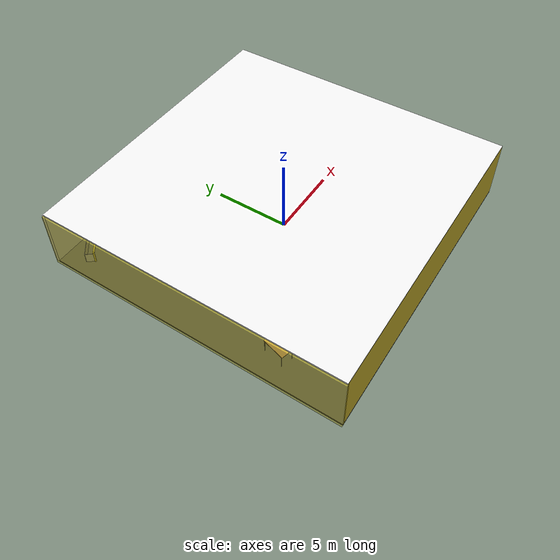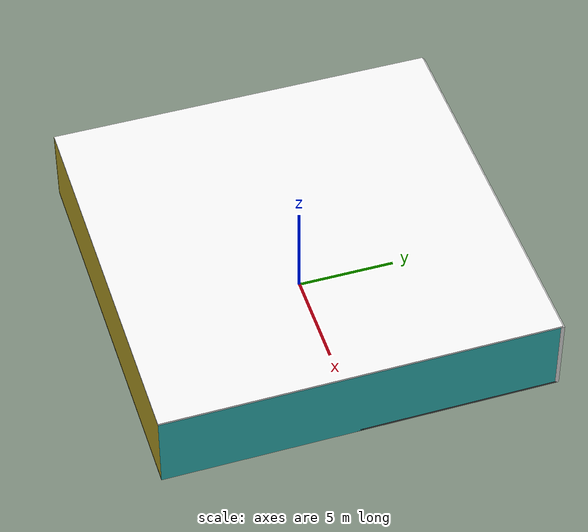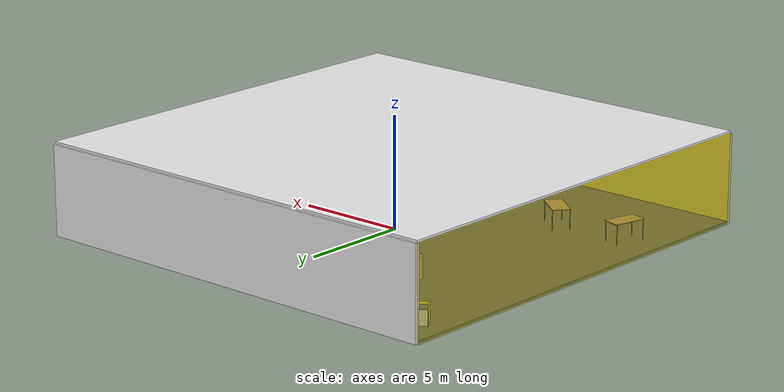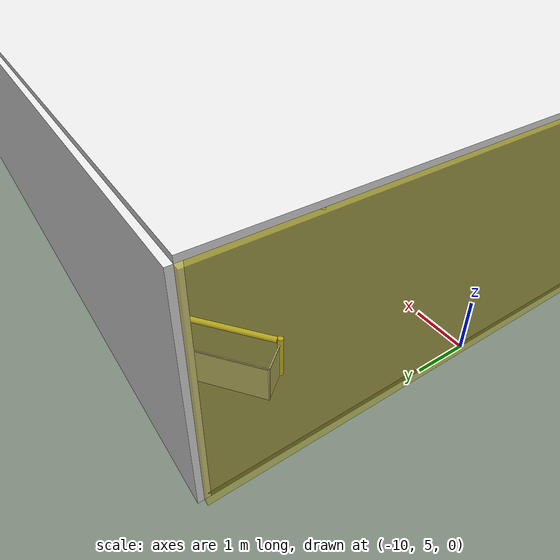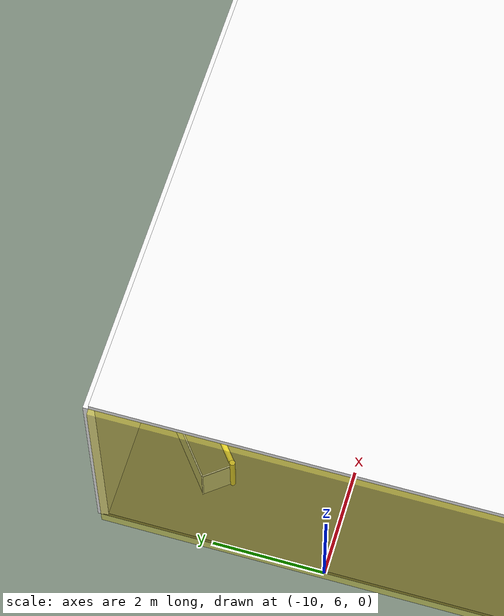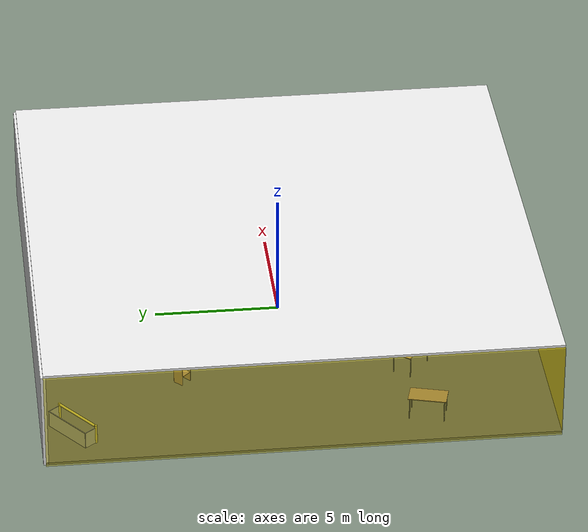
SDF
<sdf version="1.4">
 <world name="default">
  <physics type="ode">
   <max_step_size>0.001</max_step_size>
   <real_time_factor>1</real_time_factor>
   <real_time_update_rate>1000</real_time_update_rate>
   <gravity>0 0 -9.8</gravity>
  </physics>
  <scene><ambient>0.4 0.4 0.4 1</ambient><background>0.7 0.7 0.7 1</background><shadows>1</shadows></scene>
  <model name="Surrounding">
   <static>1</static>
   <link name="Ceiling">
    <collision name="Ceiling_Collision"><geometry><box><size>20 20 0.1</size></box></geometry></collision>
    <visual name="Ceiling_Visual">
     <geometry><box><size>20 20 0.1</size></box></geometry>
     <material>
      <script><uri>file://media/materials/scripts/gazebo.material</uri><name>Gazebo/White</name></script>
     </material>
    </visual>
    <pose>0 0 4.05 0 0 0</pose>
   </link>
   <link name="Wall_South">
    <collision name="Wall_South_Collision">
     <geometry><box><size>20 0 4</size></box></geometry>
     <pose>0 0 2 0 -0 0</pose>
    </collision>
    <visual name="Wall_South_Visual">
     <pose>0 0 2 0 -0 0</pose>
     <geometry><box><size>20 0 4</size></box></geometry>
     <material>
      <script><uri>file://media/materials/scripts/gazebo.material</uri><name>Gazebo/ZincYellow</name></script>
     </material>
    </visual>
    <velocity_decay><linear>0</linear><angular>0</angular></velocity_decay>
    <pose>0 -10 0 0 -0 0</pose>
   </link>
   <link name="Wall_East">
    <collision name="Wall_21_Collision">
     <geometry><box><size>20 0 4</size></box></geometry>
     <pose>0 0 2 0 -0 0</pose>
    </collision>
    <visual name="Wall_21_Visual">
     <pose>0 0 2 0 -0 0</pose>
     <geometry><box><size>20 0 4</size></box></geometry>
     <material>
      <script>
       <uri>file://media/materials/scripts/gazebo.material</uri>
       <name>Gazebo/TurquoiseGlowOutline</name>
      </script>
     </material>
    </visual>
    <velocity_decay><linear>0</linear><angular>0</angular></velocity_decay>
    <pose>10 0 0 0 -0 1.5708</pose>
   </link>
   <link name="Wall_North">
    <collision name="Wall_22_Collision">
     <geometry><box><size>20 0.2 4</size></box></geometry>
     <pose>0 0 2 0 -0 0</pose>
    </collision>
    <visual name="Wall_22_Visual">
     <pose>0 0 2 0 -0 0</pose>
     <geometry><box><size>20 0.2 4</size></box></geometry>
     <material>
      <script><uri>file://media/materials/scripts/gazebo.material</uri><name>Gazebo/White</name></script>
     </material>
    </visual>
    <velocity_decay><linear>0</linear><angular>0</angular></velocity_decay>
    <pose>0 10 0 0 -0 0</pose>
   </link>
   <link name="Wall_West">
    <collision name="Wall_23_Collision">
     <geometry><box><size>20 0.2 4</size></box></geometry>
     <pose>0 0 2 0 -0 0</pose>
    </collision>
    <visual name="Wall_23_Visual">
     <pose>0 0 2 0 -0 0</pose>
     <geometry><box><size>20 0.2 4</size></box></geometry>
     <material>
      <script>
       <uri>file://media/materials/scripts/gazebo.material</uri>
       <name>Gazebo/YellowTransparent</name>
      </script>
     </material>
    </visual>
    <velocity_decay><linear>0</linear><angular>0</angular></velocity_decay>
    <pose>-10 0 0 0 0 -1.5708</pose>
   </link>
   <link name="Ground_link">
    <collision name="collision">
     <pose>0 0 .05 0 -0 0</pose>
     <geometry><box><size>20 20 0.1</size></box></geometry>
    </collision>
    <visual name="visual">
     <pose>0 0 .05 0 -0 0</pose>
     <geometry><box><size>20 20 0.1</size></box></geometry>
     <material>
      <script><uri>file://media/materials/scripts/gazebo.material</uri><name>Gazebo/DarkGrey</name></script>
     </material>
    </visual>
   </link>
   <static>1</static>
  </model>
  <spherical_coordinates>
   <surface_model>EARTH_WGS84</surface_model>
   <latitude_deg>0</latitude_deg>
   <longitude_deg>0</longitude_deg>
   <elevation>0</elevation>
   <heading_deg>0</heading_deg>
  </spherical_coordinates>
  <light name="lightball_0" type="diffuse">
   <diffuse>0.8 0.8 0.8 1</diffuse>
   <specular>0.2 0.2 0.2 1</specular>
   <attenuation>
    <range>100</range>
    <constant>0.7</constant>
    <linear>0.01</linear>
    <quadratic>0.001</quadratic>
   </attenuation>
   <direction>-0.5 0.1 -0.9</direction>
   <pose>2.84083851917 -8.93439427084 2.90713137208 0 0 0</pose>
  </light>
  <light name="lightball_1" type="diffuse">
   <diffuse>0.8 0.8 0.8 1</diffuse>
   <specular>0.2 0.2 0.2 1</specular>
   <attenuation>
    <range>100</range>
    <constant>0.7</constant>
    <linear>0.01</linear>
    <quadratic>0.001</quadratic>
   </attenuation>
   <direction>-0.5 0.1 -0.9</direction>
   <pose>-7.96737531771 8.29602328393 2.83717921147 0 0 0</pose>
  </light>
  <light name="lightball_2" type="diffuse">
   <diffuse>0.8 0.8 0.8 1</diffuse>
   <specular>0.2 0.2 0.2 1</specular>
   <attenuation>
    <range>100</range>
    <constant>0.7</constant>
    <linear>0.01</linear>
    <quadratic>0.001</quadratic>
   </attenuation>
   <direction>-0.5 0.1 -0.9</direction>
   <pose>2.41452817689 -1.44401280919 1.63876212729 0 0 0</pose>
  </light>
  <light name="lightball_3" type="diffuse">
   <diffuse>0.8 0.8 0.8 1</diffuse>
   <specular>0.2 0.2 0.2 1</specular>
   <attenuation>
    <range>100</range>
    <constant>0.7</constant>
    <linear>0.01</linear>
    <quadratic>0.001</quadratic>
   </attenuation>
   <direction>-0.5 0.1 -0.9</direction>
   <pose>2.23571433296 -5.72625804763 1.14346293384 0 0 0</pose>
  </light>
  <light name="lightball_4" type="diffuse">
   <diffuse>0.8 0.8 0.8 1</diffuse>
   <specular>0.2 0.2 0.2 1</specular>
   <attenuation>
    <range>100</range>
    <constant>0.7</constant>
    <linear>0.01</linear>
    <quadratic>0.001</quadratic>
   </attenuation>
   <direction>-0.5 0.1 -0.9</direction>
   <pose>0.281517037457 0.951436252007 2.93118222384 0 0 0</pose>
  </light>
  <light name="lightball_5" type="diffuse">
   <diffuse>0.8 0.8 0.8 1</diffuse>
   <specular>0.2 0.2 0.2 1</specular>
   <attenuation>
    <range>100</range>
    <constant>0.7</constant>
    <linear>0.01</linear>
    <quadratic>0.001</quadratic>
   </attenuation>
   <direction>-0.5 0.1 -0.9</direction>
   <pose>-9.03642213388 -9.52245420522 3.5843722402 0 0 0</pose>
  </light>
  <light name="lightball_6" type="diffuse">
   <diffuse>0.8 0.8 0.8 1</diffuse>
   <specular>0.2 0.2 0.2 1</specular>
   <attenuation>
    <range>100</range>
    <constant>0.7</constant>
    <linear>0.01</linear>
    <quadratic>0.001</quadratic>
   </attenuation>
   <direction>-0.5 0.1 -0.9</direction>
   <pose>-3.461814339 -5.84565893818 2.72820931018 0 0 0</pose>
  </light>
  <light name="lightball_7" type="diffuse">
   <diffuse>0.8 0.8 0.8 1</diffuse>
   <specular>0.2 0.2 0.2 1</specular>
   <attenuation>
    <range>100</range>
    <constant>0.7</constant>
    <linear>0.01</linear>
    <quadratic>0.001</quadratic>
   </attenuation>
   <direction>-0.5 0.1 -0.9</direction>
   <pose>-3.59755170374 -9.48251165096 2.19447583022 0 0 0</pose>
  </light>
  <include><uri>model://table</uri><pose>-8.31732626224 -4.99120465607 0 0 0 1.3079292655</pose></include>
  <include>
   <uri>model://robocup_3Dsim_goal</uri>
   <pose>-8.01124622063 8.64306044148 0 0 0 2.2392126353</pose>
  </include>
  <include><uri>model://table</uri><pose>-4.92644045358 -4.77165134946 0 0 0 2.48899009824</pose></include>
  <include><uri>model://cabinet</uri><pose>-5.01381547397 4.32907518873 0 0 0 0.766508419842</pose></include>
  <include><uri>model://cabinet</uri><pose>-0.415533886806 -5.02906364762 0 0 0 1.55534760991</pose></include>
  <include><uri>model://cabinet</uri><pose>1.30947572443 -1.90066644441 0 0 0 2.18837097615</pose></include>
  <include><uri>model://cabinet</uri><pose>4.34430112807 -7.88336177472 0 0 0 2.45190902144</pose></include>
  <include><uri>model://table</uri><pose>7.19270074335 -6.7312083547 0 0 0 1.99932785495</pose></include>
 </world>
</sdf>

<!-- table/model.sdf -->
<sdf version="1.5">
  <model name="table">
    <static>true</static>
    <link name="link">
      <collision name="surface">
        <pose>0 0 1.0 0 0 0</pose>
        <geometry>
          <box>
            <size>1.5 0.8 0.03</size>
          </box>
        </geometry>
        <surface>
          <friction>
            <ode>
              <mu>0.6</mu>
              <mu2>0.6</mu2>
            </ode>
          </friction>
        </surface>
      </collision>
      <visual name="visual1">
        <pose>0 0 1.0 0 0 0</pose>
        <geometry>
          <box>
            <size>1.5 0.8 0.03</size>
          </box>
        </geometry>
        <material>
          <script>
            <uri>model://media/materials/scripts/gazebo.material</uri>
            <name>Gazebo/Wood</name>
          </script>
        </material>
      </visual>
      <collision name="front_left_leg">
        <pose>0.68 0.38 0.5 0 0 0</pose>
        <geometry>
          <cylinder>
            <radius>0.02</radius>
            <length>1.0</length>
          </cylinder>
        </geometry>
      </collision>
      <visual name="front_left_leg">
        <pose>0.68 0.38 0.5 0 0 0</pose>
        <geometry>
          <cylinder>
            <radius>0.02</radius>
            <length>1.0</length>
          </cylinder>
        </geometry>
        <material>
          <script>
            <uri>model://media/materials/scripts/gazebo.material</uri>
            <name>Gazebo/Grey</name>
          </script>
        </material>
      </visual>
      <collision name="front_right_leg">
        <pose>0.68 -0.38 0.5 0 0 0</pose>
        <geometry>
          <cylinder>
            <radius>0.02</radius>
            <length>1.0</length>
          </cylinder>
        </geometry>
      </collision>
      <visual name="front_right_leg">
        <pose>0.68 -0.38 0.5 0 0 0</pose>
        <geometry>
          <cylinder>
            <radius>0.02</radius>
            <length>1.0</length>
          </cylinder>
        </geometry>
        <material>
          <script>
            <uri>model://media/materials/scripts/gazebo.material</uri>
            <name>Gazebo/Grey</name>
          </script>
        </material>
      </visual>
      <collision name="back_right_leg">
        <pose>-0.68 -0.38 0.5 0 0 0</pose>
        <geometry>
          <cylinder>
            <radius>0.02</radius>
            <length>1.0</length>
          </cylinder>
        </geometry>
      </collision>
      <visual name="back_right_leg">
        <pose>-0.68 -0.38 0.5 0 0 0</pose>
        <geometry>
          <cylinder>
            <radius>0.02</radius>
            <length>1.0</length>
          </cylinder>
        </geometry>
        <material>
          <script>
            <uri>model://media/materials/scripts/gazebo.material</uri>
            <name>Gazebo/Grey</name>
          </script>
        </material>
      </visual>
      <collision name="back_left_leg">
        <pose>-0.68 0.38 0.5 0 0 0</pose>
        <geometry>
          <cylinder>
            <radius>0.02</radius>
            <length>1.0</length>
          </cylinder>
        </geometry>
      </collision>
      <visual name="back_left_leg">
        <pose>-0.68 0.38 0.5 0 0 0</pose>
        <geometry>
          <cylinder>
            <radius>0.02</radius>
            <length>1.0</length>
          </cylinder>
        </geometry>
        <material>
          <script>
            <uri>model://media/materials/scripts/gazebo.material</uri>
            <name>Gazebo/Grey</name>
          </script>
        </material>
      </visual>
    </link>
  </model>
</sdf>

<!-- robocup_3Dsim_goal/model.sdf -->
<sdf version="1.5">
  <model name="robocup_3d_goal">
    <static>true</static>
    <link name="left_post">
      <pose>0 1.05 0.45 0 0 0</pose>
      <collision name="collision">
        <geometry>
          <cylinder>
            <radius>0.05</radius>
            <length>0.9</length>
          </cylinder>
        </geometry>
      </collision>
      <visual name="visual">
        <geometry>
          <cylinder>
            <radius>0.05</radius>
            <length>0.9</length>
          </cylinder>
        </geometry>
        <material>
          <script>
            <uri>file://media/materials/scripts/gazebo.material</uri>
            <name>Gazebo/ZincYellow</name>
          </script>
        </material>
      </visual>
    </link>
    <link name="left_support_horiz_lower">
      <pose>0.30 1.05 0.01 0 0 0</pose>
      <collision name="collision">
        <geometry>
          <box>
            <size>0.50 0.02 0.02</size>
          </box>
        </geometry>
      </collision>
      <visual name="visual">
        <geometry>
          <box>
            <size>0.50 0.02 0.02</size>
          </box>
        </geometry>
        <material>
          <script>
            <uri>file://media/materials/scripts/gazebo.material</uri>
            <name>Gazebo/White</name>
          </script>
        </material>
      </visual>
    </link>
    <link name="left_support_horiz_upper">
      <pose>0.30 1.05 0.79 0 0 0</pose>
      <collision name="collision">
        <geometry>
          <box>
            <size>0.50 0.02 0.02</size>
          </box>
        </geometry>
      </collision>
      <visual name="visual">
        <geometry>
          <box>
            <size>0.50 0.02 0.02</size>
          </box>
        </geometry>
        <material>
          <script>
            <uri>file://media/materials/scripts/gazebo.material</uri>
            <name>Gazebo/White</name>
          </script>
        </material>
      </visual>
    </link>
    <link name="left_support_vertical">
      <pose>0.56 1.05 0.4 0 1.5708 0</pose>
      <collision name="collision">
        <geometry>
          <box>
            <size>0.80 0.02 0.02</size>
          </box>
        </geometry>
      </collision>
      <visual name="visual">
        <geometry>
          <box>
            <size>0.80 0.02 0.02</size>
          </box>
        </geometry>
        <material>
          <script>
            <uri>file://media/materials/scripts/gazebo.material</uri>
            <name>Gazebo/White</name>
          </script>
        </material>
      </visual>
    </link>
    <link name="right_support_horiz_lower">
      <pose>0.30 -1.05 0.01 0 0 0</pose>
      <collision name="collision">
        <geometry>
          <box>
            <size>0.50 0.02 0.02</size>
          </box>
        </geometry>
      </collision>
      <visual name="visual">
        <geometry>
          <box>
            <size>0.50 0.02 0.02</size>
          </box>
        </geometry>
        <material>
          <script>
            <uri>file://media/materials/scripts/gazebo.material</uri>
            <name>Gazebo/White</name>
          </script>
        </material>
      </visual>
    </link>
    <link name="right_support_horiz_upper">
      <pose>0.30 -1.05 0.79 0 0 0</pose>
      <collision name="collision">
        <geometry>
          <box>
            <size>0.50 0.02 0.02</size>
          </box>
        </geometry>
      </collision>
      <visual name="visual">
        <geometry>
          <box>
            <size>0.50 0.02 0.02</size>
          </box>
        </geometry>
        <material>
          <script>
            <uri>file://media/materials/scripts/gazebo.material</uri>
            <name>Gazebo/White</name>
          </script>
        </material>
      </visual>
    </link>
    <link name="right_support_vertical">
      <pose>0.56 -1.05 0.4 0 1.5708 0</pose>
      <collision name="collision">
        <geometry>
          <box>
            <size>0.80 0.02 0.02</size>
          </box>
        </geometry>
      </collision>
      <visual name="visual">
        <geometry>
          <box>
            <size>0.80 0.02 0.02</size>
          </box>
        </geometry>
        <material>
          <script>
            <uri>file://media/materials/scripts/gazebo.material</uri>
            <name>Gazebo/White</name>
          </script>
        </material>
      </visual>
    </link>
    <link name="center_support_horiz_lower">
      <pose>0.56 0 0.01 0 1.5708 0</pose>
      <collision name="collision">
        <geometry>
          <box>
            <size>0.02 2.08 0.02</size>
          </box>
        </geometry>
      </collision>
      <visual name="visual">
        <geometry>
          <box>
            <size>0.02 2.08 0.02</size>
          </box>
        </geometry>
        <material>
          <script>
            <uri>file://media/materials/scripts/gazebo.material</uri>
            <name>Gazebo/White</name>
          </script>
        </material>
      </visual>
    </link>
    <link name="center_support_horiz_upper">
      <pose>0.56 0 0.79 0 1.5708 0</pose>
      <collision name="collision">
        <geometry>
          <box>
            <size>0.02 2.08 0.02</size>
          </box>
        </geometry>
      </collision>
      <visual name="visual">
        <geometry>
          <box>
            <size>0.02 2.08 0.02</size>
          </box>
        </geometry>
        <material>
          <script>
            <uri>file://media/materials/scripts/gazebo.material</uri>
            <name>Gazebo/White</name>
          </script>
        </material>
      </visual>
    </link>
    <link name="right_post">
      <pose>0 -1.05 0.45 0 0 0</pose>
      <collision name="collision">
        <geometry>
          <cylinder>
            <radius>0.05</radius>
            <length>0.9</length>
          </cylinder>
        </geometry>
      </collision>
      <visual name="visual">
        <geometry>
          <cylinder>
            <radius>0.05</radius>
            <length>0.9</length>
          </cylinder>
        </geometry>
        <material>
          <script>
            <uri>file://media/materials/scripts/gazebo.material</uri>
            <name>Gazebo/ZincYellow</name>
          </script>
        </material>
      </visual>
    </link>
    <link name="crossbar">
      <pose>0 0 0.85 1.57 1.57 0</pose>
      <collision name="collision">
        <geometry>
          <cylinder>
            <radius>0.05</radius>
            <length>2.0</length>
          </cylinder>
        </geometry>
      </collision>
      <visual name="visual">
        <geometry>
          <cylinder>
            <radius>0.05</radius>
            <length>2.0</length>
          </cylinder>
        </geometry>
        <material>
          <script>
            <uri>file://media/materials/scripts/gazebo.material</uri>
            <name>Gazebo/ZincYellow</name>
          </script>
        </material>
      </visual>
    </link>
    <link name="center_net">
      <pose>0.56 0 0.40 0 0 0</pose>
      <collision name="collision">
        <geometry>
          <box>
            <size>0.01 2.1 0.80</size>
          </box>
        </geometry>
      </collision>
      <visual name="visual">
        <geometry>
          <box>
            <size>0.01 2.1 0.80</size>
          </box>
        </geometry>
        <material>
          <script>
            <uri>model://../model_source/models/robocup09_spl_field/materials/scripts/</uri>
            <uri>model://../model_source/models/robocup09_spl_field/materials/textures/</uri>
            <name>RoboCup/Net</name>
          </script>
        </material>
      </visual>
    </link>
    <link name="left_net">
      <pose>0.30 1.05 0.40 0 0 0</pose>
      <collision name="collision">
        <geometry>
          <box>
            <size>0.50 0.01 0.76</size>
          </box>
        </geometry>
      </collision>
      <visual name="visual">
        <geometry>
          <box>
            <size>0.50 0.01 0.76</size>
          </box>
        </geometry>
        <material>
          <script>
            <uri>model://../model_source/models/robocup09_spl_field/materials/scripts/</uri>
            <uri>model://../model_source/models/robocup09_spl_field/materials/textures/</uri>
            <name>RoboCup/Net</name>
          </script>
        </material>
      </visual>
    </link>
    <link name="right_net">
      <pose>0.30 -1.05 0.40 0 0 0</pose>
      <collision name="collision">
        <geometry>
          <box>
            <size>0.50 0.01 0.76</size>
          </box>
        </geometry>
      </collision>
      <visual name="visual">
        <geometry>
          <box>
            <size>0.50 0.01 0.76</size>
          </box>
        </geometry>
        <material>
          <script>
            <uri>model://../model_source/models/robocup09_spl_field/materials/scripts/</uri>
            <uri>model://../model_source/models/robocup09_spl_field/materials/textures/</uri>
            <name>RoboCup/Net</name>
          </script>
        </material>
      </visual>
    </link>
  </model>
</sdf>

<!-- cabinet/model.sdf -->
<sdf version="1.5">
  <model name="cabinet">
    <static>true</static>
    <link name="cabinet_bottom_plate">
      <inertial>
        <pose>0 0 -1 0 0 0</pose>
        <inertia>
          <ixx>2.050000</ixx>
          <ixy>0</ixy>
          <ixz>0</ixz>
          <iyy>2.050000</iyy>
          <iyz>0</iyz>
          <izz>2.050000</izz>
        </inertia>
        <mass>25.000000</mass>
      </inertial>
      <collision name="cabinet_bottom_plate_geom">
        <pose>0 0 0.010000 0 0 0</pose>
        <geometry>
          <box>
            <size>0.450000 0.450000 0.020000</size>
          </box>
        </geometry>
      </collision>
      <visual name="cabinet_bottom_plate_geom_visual">
        <pose>0 0 0.010000 0 0 0</pose>
        <geometry>
          <box>
            <size>0.450000 0.450000 0.020000</size>
          </box>
        </geometry>
        <material>
          <script>
            <uri>model://media/materials/scripts/gazebo.material</uri>
            <name>Gazebo/Wood</name>
          </script>
        </material>
      </visual>
      <collision name="cabinet_bottom_plate_geom_cabinet_back_plate">
        <pose>0.235000 0 0.510000 0 0 0</pose>
        <geometry>
          <box>
            <size>0.020000 0.450000 1.020000</size>
          </box>
        </geometry>
      </collision>
      <visual name="cabinet_bottom_plate_geom_cabinet_back_plate_visual">
        <pose>0.235000 0 0.510000 0 0 0</pose>
        <geometry>
          <box>
            <size>0.020000 0.450000 1.020000</size>
          </box>
        </geometry>
        <material>
          <script>
            <uri>model://media/materials/scripts/gazebo.material</uri>
            <name>Gazebo/Wood</name>
          </script>
        </material>
      </visual>
      <collision name="cabinet_bottom_plate_geom_cabinet_left_plate">
        <pose>0 0.235000 0.510000 0 0 0</pose>
        <geometry>
          <box>
            <size>0.450000 0.020000 1.020000</size>
          </box>
        </geometry>
      </collision>
      <visual name="cabinet_bottom_plate_geom_cabinet_left_plate_visual">
        <pose>0 0.235000 0.510000 0 0 0</pose>
        <geometry>
          <box>
            <size>0.450000 0.020000 1.020000</size>
          </box>
        </geometry>
        <material>
          <script>
            <uri>model://media/materials/scripts/gazebo.material</uri>
            <name>Gazebo/Wood</name>
          </script>
        </material>
      </visual>
      <collision name="cabinet_bottom_plate_geom_cabinet_middle_plate">
        <pose>0 0 0.510000 0 0 0</pose>
        <geometry>
          <box>
            <size>0.450000 0.450000 0.020000</size>
          </box>
        </geometry>
      </collision>
      <visual name="cabinet_bottom_plate_geom_cabinet_middle_plate_visual">
        <pose>0 0 0.510000 0 0 0</pose>
        <geometry>
          <box>
            <size>0.450000 0.450000 0.020000</size>
          </box>
        </geometry>
        <material>
          <script>
            <uri>model://media/materials/scripts/gazebo.material</uri>
            <name>Gazebo/Wood</name>
          </script>
        </material>
      </visual>
      <collision name="cabinet_bottom_plate_geom_cabinet_right_plate">
        <pose>0 -0.235000 0.510000 0 0 0</pose>
        <geometry>
          <box>
            <size>0.450000 0.020000 1.020000</size>
          </box>
        </geometry>
      </collision>
      <visual name="cabinet_bottom_plate_geom_cabinet_right_plate_visual">
        <pose>0 -0.235000 0.510000 0 0 0</pose>
        <geometry>
          <box>
            <size>0.450000 0.020000 1.020000</size>
          </box>
        </geometry>
        <material>
          <script>
            <uri>model://media/materials/scripts/gazebo.material</uri>
            <name>Gazebo/Wood</name>
          </script>
        </material>
      </visual>
      <collision name="cabinet_bottom_plate_geom_cabinet_top_plate">
        <pose>0 0 1.010000 0 0 0</pose>
        <geometry>
          <box>
            <size>0.450000 0.450000 0.020000</size>
          </box>
        </geometry>
      </collision>
      <visual name="cabinet_bottom_plate_geom_cabinet_top_plate_visual">
        <pose>0 0 1.010000 0 0 0</pose>
        <geometry>
          <box>
            <size>0.450000 0.450000 0.020000</size>
          </box>
        </geometry>
        <material>
          <script>
            <uri>model://media/materials/scripts/gazebo.material</uri>
            <name>Gazebo/Wood</name>
          </script>
        </material>
      </visual>
    </link>
  </model>
</sdf>
